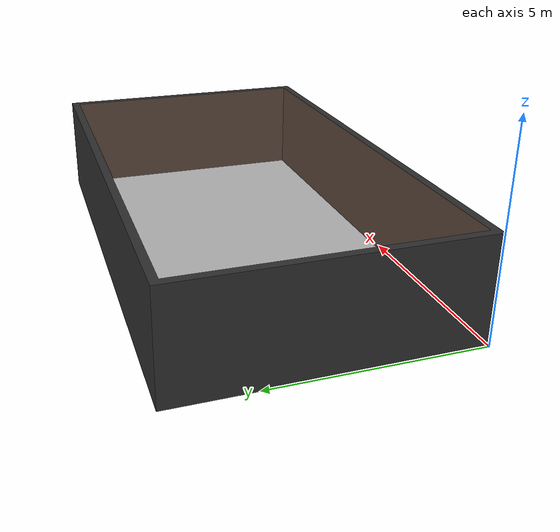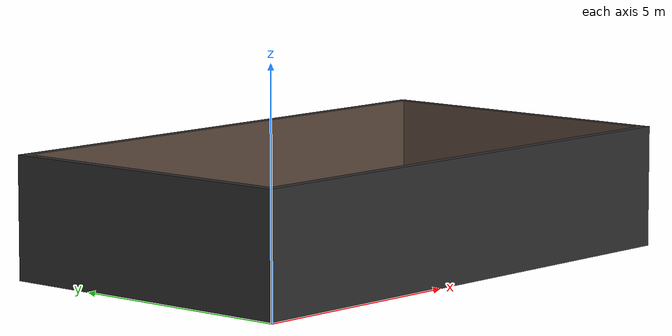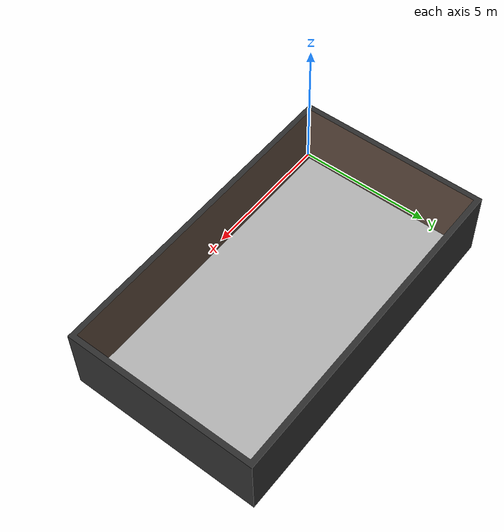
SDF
<?xml version="1.0" ?>
<sdf version="1.5">
  <model name="room">
    <static>true</static>
    <link name="room_link">
      <collision name="collision">
        <geometry>
          <mesh>
            <uri>model://test_room/meshes/empty_room.dae</uri>
          </mesh>
        </geometry>
      </collision>
      <visual name="room_mesh">
      <cast_shadows>true</cast_shadows>
        <geometry>
          <mesh>
            <uri>model://test_room/meshes/empty_room.dae</uri>
          </mesh>
        </geometry>
      </visual>
    </link>
  </model>
</sdf>
